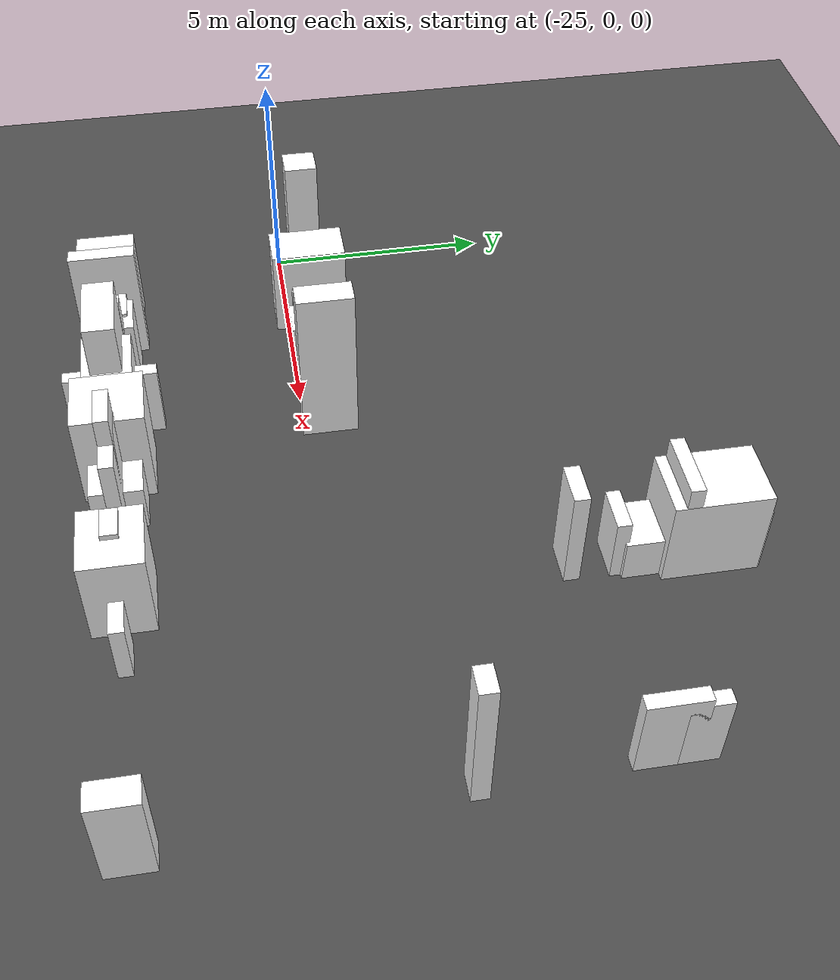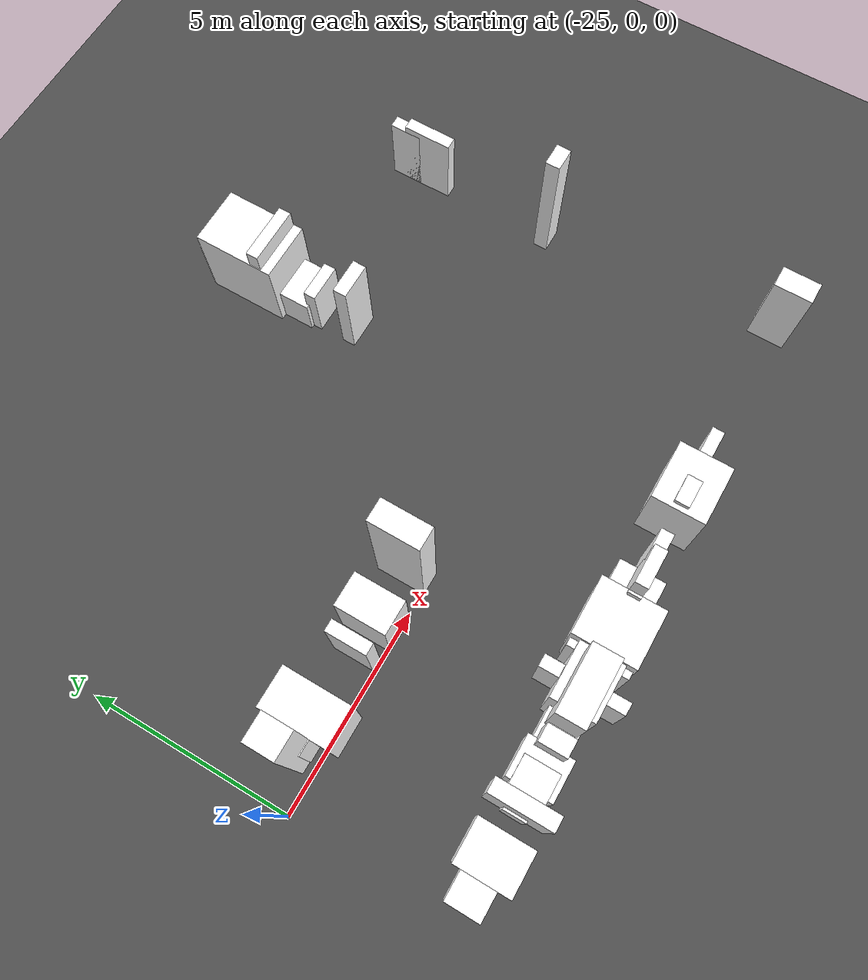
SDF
<sdf version="1.6">
 <world name="mirror_edge_world">
  <model name="ground_plane">
   <static>true</static>
   <link name="link">
    <collision name="collision">
     <geometry><plane><normal>0 0 1</normal><size>100 100</size></plane></geometry>
    </collision>
    <visual name="visual">
     <geometry><plane><normal>0 0 1</normal><size>100 100</size></plane></geometry>
     <material>
      <ambient>0.3 0.3 0.3 1</ambient>
      <diffuse>0.3 0.3 0.3 1</diffuse>
      <specular>0.5 0.5 0.5 1</specular>
      <emissive>0 0 0 1</emissive>
     </material>
    </visual>
   </link>
  </model>
  <model name="roadside_block_3_50_0">
   <static>true</static>
   <link name="link">
    <pose>-14.500712767602899 7.847958356860575 0.8271622026501164 0 0 0</pose>
    <collision name="collision">
     <geometry><box><size>1.3952716382572525 1.4444140237283143 1.6543244053002328</size></box></geometry>
    </collision>
    <visual name="visual">
     <geometry><box><size>1.3952716382572525 1.4444140237283143 1.6543244053002328</size></box></geometry>
     <material>
      <ambient>1 1 1 1</ambient>
      <diffuse>1 1 1 1</diffuse>
      <specular>0.9 0.9 0.9 1</specular>
      <emissive>0.05 0.05 0.05 1</emissive>
     </material>
    </visual>
   </link>
  </model>
  <model name="roadside_block_3_51_0">
   <static>true</static>
   <link name="link">
    <pose>-14.500712767602899 7.540317523997787 1.0459228507367115 0 0 0</pose>
    <collision name="collision">
     <geometry><box><size>1.4185194096509104 2.0 2.091845701473423</size></box></geometry>
    </collision>
    <visual name="visual">
     <geometry><box><size>1.4185194096509104 2.0 2.091845701473423</size></box></geometry>
     <material>
      <ambient>1 1 1 1</ambient>
      <diffuse>1 1 1 1</diffuse>
      <specular>0.9 0.9 0.9 1</specular>
      <emissive>0.05 0.05 0.05 1</emissive>
     </material>
    </visual>
   </link>
  </model>
  <model name="roadside_block_3_53_0">
   <static>true</static>
   <link name="link">
    <pose>-14.500712767602899 6.92503585827221 1.2817676842283197 0 0 0</pose>
    <collision name="collision">
     <geometry><box><size>1.383690701776096 0.3 2.5635353684566393</size></box></geometry>
    </collision>
    <visual name="visual">
     <geometry><box><size>1.383690701776096 0.3 2.5635353684566393</size></box></geometry>
     <material>
      <ambient>1 1 1 1</ambient>
      <diffuse>1 1 1 1</diffuse>
      <specular>0.9 0.9 0.9 1</specular>
      <emissive>0.05 0.05 0.05 1</emissive>
     </material>
    </visual>
   </link>
  </model>
  <model name="roadside_block_3_55_0">
   <static>true</static>
   <link name="link">
    <pose>-14.500712767602899 6.309754192546631 0.5 0 0 0</pose>
    <collision name="collision">
     <geometry><box><size>1.1083083746593492 1.0777857403071025 1.0</size></box></geometry>
    </collision>
    <visual name="visual">
     <geometry><box><size>1.1083083746593492 1.0777857403071025 1.0</size></box></geometry>
     <material>
      <ambient>1 1 1 1</ambient>
      <diffuse>1 1 1 1</diffuse>
      <specular>0.9 0.9 0.9 1</specular>
      <emissive>0.05 0.05 0.05 1</emissive>
     </material>
    </visual>
   </link>
  </model>
  <model name="roadside_block_3_56_0">
   <static>true</static>
   <link name="link">
    <pose>-9.9007127676029 6.002113359683843 0.8893914267075339 0 0 0</pose>
    <collision name="collision">
     <geometry><box><size>0.3 0.785157277844512 1.7787828534150678</size></box></geometry>
    </collision>
    <visual name="visual">
     <geometry><box><size>0.3 0.785157277844512 1.7787828534150678</size></box></geometry>
     <material>
      <ambient>1 1 1 1</ambient>
      <diffuse>1 1 1 1</diffuse>
      <specular>0.9 0.9 0.9 1</specular>
      <emissive>0.05 0.05 0.05 1</emissive>
     </material>
    </visual>
   </link>
  </model>
  <model name="roadside_block_3_57_0">
   <static>true</static>
   <link name="link">
    <pose>-14.500712767602899 5.694472526821055 0.7556667797105794 0 0 0</pose>
    <collision name="collision">
     <geometry><box><size>0.9189042706695628 0.3 1.5113335594211588</size></box></geometry>
    </collision>
    <visual name="visual">
     <geometry><box><size>0.9189042706695628 0.3 1.5113335594211588</size></box></geometry>
     <material>
      <ambient>1 1 1 1</ambient>
      <diffuse>1 1 1 1</diffuse>
      <specular>0.9 0.9 0.9 1</specular>
      <emissive>0.05 0.05 0.05 1</emissive>
     </material>
    </visual>
   </link>
  </model>
  <model name="roadside_block_3_58_0">
   <static>true</static>
   <link name="link">
    <pose>-9.9007127676029 5.386831693958268 0.9790327399200878 0 0 0</pose>
    <collision name="collision">
     <geometry><box><size>0.3 1.2061769712227408 1.9580654798401755</size></box></geometry>
    </collision>
    <visual name="visual">
     <geometry><box><size>0.3 1.2061769712227408 1.9580654798401755</size></box></geometry>
     <material>
      <ambient>1 1 1 1</ambient>
      <diffuse>1 1 1 1</diffuse>
      <specular>0.9 0.9 0.9 1</specular>
      <emissive>0.05 0.05 0.05 1</emissive>
     </material>
    </visual>
   </link>
  </model>
  <model name="roadside_block_3_60_0">
   <static>true</static>
   <link name="link">
    <pose>-14.500712767602899 4.771550028232689 1.2050505959637976 0 0 0</pose>
    <collision name="collision">
     <geometry><box><size>0.8715767964350316 0.32867758523544666 2.410101191927595</size></box></geometry>
    </collision>
    <visual name="visual">
     <geometry><box><size>0.8715767964350316 0.32867758523544666 2.410101191927595</size></box></geometry>
     <material>
      <ambient>1 1 1 1</ambient>
      <diffuse>1 1 1 1</diffuse>
      <specular>0.9 0.9 0.9 1</specular>
      <emissive>0.05 0.05 0.05 1</emissive>
     </material>
    </visual>
   </link>
  </model>
  <model name="roadside_block_3_69_0">
   <static>true</static>
   <link name="link">
    <pose>-9.9007127676029 2.002782532467595 1.654625317436449 0 0 0</pose>
    <collision name="collision">
     <geometry><box><size>0.5630547976939178 0.3567417492292497 3.309250634872898</size></box></geometry>
    </collision>
    <visual name="visual">
     <geometry><box><size>0.5630547976939178 0.3567417492292497 3.309250634872898</size></box></geometry>
     <material>
      <ambient>1 1 1 1</ambient>
      <diffuse>1 1 1 1</diffuse>
      <specular>0.9 0.9 0.9 1</specular>
      <emissive>0.05 0.05 0.05 1</emissive>
     </material>
    </visual>
   </link>
  </model>
  <model name="roadside_block_4_0_0">
   <static>true</static>
   <link name="link">
    <pose>-24.046 -4.037353343994417 0.5 0 0 0</pose>
    <collision name="collision">
     <geometry><box><size>1.3571045578873338 0.8447992108439666 1.0</size></box></geometry>
    </collision>
    <visual name="visual">
     <geometry><box><size>1.3571045578873338 0.8447992108439666 1.0</size></box></geometry>
     <material>
      <ambient>1 1 1 1</ambient>
      <diffuse>1 1 1 1</diffuse>
      <specular>0.9 0.9 0.9 1</specular>
      <emissive>0.05 0.05 0.05 1</emissive>
     </material>
    </visual>
   </link>
  </model>
  <model name="roadside_block_4_1_0">
   <static>true</static>
   <link name="link">
    <pose>-23.775722127329516 0.5626466560055823 1.9129224038467767 0 0 0</pose>
    <collision name="collision">
     <geometry><box><size>0.6601572133608336 0.7144933757955074 3.8258448076935534</size></box></geometry>
    </collision>
    <visual name="visual">
     <geometry><box><size>0.6601572133608336 0.7144933757955074 3.8258448076935534</size></box></geometry>
     <material>
      <ambient>1 1 1 1</ambient>
      <diffuse>1 1 1 1</diffuse>
      <specular>0.9 0.9 0.9 1</specular>
      <emissive>0.05 0.05 0.05 1</emissive>
     </material>
    </visual>
   </link>
  </model>
  <model name="roadside_block_4_2_0">
   <static>true</static>
   <link name="link">
    <pose>-23.505444254659036 -4.037353343994417 1.038353640607065 0 0 0</pose>
    <collision name="collision">
     <geometry><box><size>1.0113448933463915 1.3048746883781766 2.07670728121413</size></box></geometry>
    </collision>
    <visual name="visual">
     <geometry><box><size>1.0113448933463915 1.3048746883781766 2.07670728121413</size></box></geometry>
     <material>
      <ambient>1 1 1 1</ambient>
      <diffuse>1 1 1 1</diffuse>
      <specular>0.9 0.9 0.9 1</specular>
      <emissive>0.05 0.05 0.05 1</emissive>
     </material>
    </visual>
   </link>
  </model>
  <model name="roadside_block_4_3_0">
   <static>true</static>
   <link name="link">
    <pose>-23.235166381988552 0.5626466560055823 0.9350635928655766 0 0 0</pose>
    <collision name="collision">
     <geometry><box><size>1.1771664045285253 0.7603756350148442 1.8701271857311532</size></box></geometry>
    </collision>
    <visual name="visual">
     <geometry><box><size>1.1771664045285253 0.7603756350148442 1.8701271857311532</size></box></geometry>
     <material>
      <ambient>1 1 1 1</ambient>
      <diffuse>1 1 1 1</diffuse>
      <specular>0.9 0.9 0.9 1</specular>
      <emissive>0.05 0.05 0.05 1</emissive>
     </material>
    </visual>
   </link>
  </model>
  <model name="roadside_block_4_4_0">
   <static>true</static>
   <link name="link">
    <pose>-22.96488850931807 0.5626466560055823 1.059534993975058 0 0 0</pose>
    <collision name="collision">
     <geometry><box><size>0.9768791020309419 1.670859963521246 2.119069987950116</size></box></geometry>
    </collision>
    <visual name="visual">
     <geometry><box><size>0.9768791020309419 1.670859963521246 2.119069987950116</size></box></geometry>
     <material>
      <ambient>1 1 1 1</ambient>
      <diffuse>1 1 1 1</diffuse>
      <specular>0.9 0.9 0.9 1</specular>
      <emissive>0.05 0.05 0.05 1</emissive>
     </material>
    </visual>
   </link>
  </model>
  <model name="roadside_block_4_5_0">
   <static>true</static>
   <link name="link">
    <pose>-22.694610636647585 0.5626466560055823 0.986767659596048 0 0 0</pose>
    <collision name="collision">
     <geometry><box><size>0.3 1.0001790942883575 1.973535319192096</size></box></geometry>
    </collision>
    <visual name="visual">
     <geometry><box><size>0.3 1.0001790942883575 1.973535319192096</size></box></geometry>
     <material>
      <ambient>1 1 1 1</ambient>
      <diffuse>1 1 1 1</diffuse>
      <specular>0.9 0.9 0.9 1</specular>
      <emissive>0.05 0.05 0.05 1</emissive>
     </material>
    </visual>
   </link>
  </model>
  <model name="roadside_block_4_6_0">
   <static>true</static>
   <link name="link">
    <pose>-22.424332763977105 -4.037353343994417 1.4078386767890463 0 0 0</pose>
    <collision name="collision">
     <geometry><box><size>0.3522733244720758 1.4423992757748794 2.8156773535780926</size></box></geometry>
    </collision>
    <visual name="visual">
     <geometry><box><size>0.3522733244720758 1.4423992757748794 2.8156773535780926</size></box></geometry>
     <material>
      <ambient>1 1 1 1</ambient>
      <diffuse>1 1 1 1</diffuse>
      <specular>0.9 0.9 0.9 1</specular>
      <emissive>0.05 0.05 0.05 1</emissive>
     </material>
    </visual>
   </link>
  </model>
  <model name="roadside_block_4_7_0">
   <static>true</static>
   <link name="link">
    <pose>-22.15405489130662 -4.037353343994417 0.7292871379911126 0 0 0</pose>
    <collision name="collision">
     <geometry><box><size>1.0075815256220693 0.5405239749127302 1.458574275982225</size></box></geometry>
    </collision>
    <visual name="visual">
     <geometry><box><size>1.0075815256220693 0.5405239749127302 1.458574275982225</size></box></geometry>
     <material>
      <ambient>1 1 1 1</ambient>
      <diffuse>1 1 1 1</diffuse>
      <specular>0.9 0.9 0.9 1</specular>
      <emissive>0.05 0.05 0.05 1</emissive>
     </material>
    </visual>
   </link>
  </model>
  <model name="roadside_block_4_8_0">
   <static>true</static>
   <link name="link">
    <pose>-21.883777018636138 -4.037353343994417 0.8815735813027196 0 0 0</pose>
    <collision name="collision">
     <geometry><box><size>0.7269092677433385 0.8293690741642297 1.7631471626054391</size></box></geometry>
    </collision>
    <visual name="visual">
     <geometry><box><size>0.7269092677433385 0.8293690741642297 1.7631471626054391</size></box></geometry>
     <material>
      <ambient>1 1 1 1</ambient>
      <diffuse>1 1 1 1</diffuse>
      <specular>0.9 0.9 0.9 1</specular>
      <emissive>0.05 0.05 0.05 1</emissive>
     </material>
    </visual>
   </link>
  </model>
  <model name="roadside_block_4_9_0">
   <static>true</static>
   <link name="link">
    <pose>-21.613499145965655 -4.037353343994417 0.8474034101713145 0 0 0</pose>
    <collision name="collision">
     <geometry><box><size>0.9618497342136927 1.0831337911399503 1.694806820342629</size></box></geometry>
    </collision>
    <visual name="visual">
     <geometry><box><size>0.9618497342136927 1.0831337911399503 1.694806820342629</size></box></geometry>
     <material>
      <ambient>1 1 1 1</ambient>
      <diffuse>1 1 1 1</diffuse>
      <specular>0.9 0.9 0.9 1</specular>
      <emissive>0.05 0.05 0.05 1</emissive>
     </material>
    </visual>
   </link>
  </model>
  <model name="roadside_block_4_10_0">
   <static>true</static>
   <link name="link">
    <pose>-21.343221273295175 0.5626466560055823 1.008108051632917 0 0 0</pose>
    <collision name="collision">
     <geometry><box><size>0.3 1.004126472371133 2.016216103265834</size></box></geometry>
    </collision>
    <visual name="visual">
     <geometry><box><size>0.3 1.004126472371133 2.016216103265834</size></box></geometry>
     <material>
      <ambient>1 1 1 1</ambient>
      <diffuse>1 1 1 1</diffuse>
      <specular>0.9 0.9 0.9 1</specular>
      <emissive>0.05 0.05 0.05 1</emissive>
     </material>
    </visual>
   </link>
  </model>
  <model name="roadside_block_4_11_0">
   <static>true</static>
   <link name="link">
    <pose>-21.07294340062469 -4.037353343994417 1.2607251207154424 0 0 0</pose>
    <collision name="collision">
     <geometry><box><size>0.4161977727162527 0.6596052155946994 2.521450241430885</size></box></geometry>
    </collision>
    <visual name="visual">
     <geometry><box><size>0.4161977727162527 0.6596052155946994 2.521450241430885</size></box></geometry>
     <material>
      <ambient>1 1 1 1</ambient>
      <diffuse>1 1 1 1</diffuse>
      <specular>0.9 0.9 0.9 1</specular>
      <emissive>0.05 0.05 0.05 1</emissive>
     </material>
    </visual>
   </link>
  </model>
  <model name="roadside_block_4_12_0">
   <static>true</static>
   <link name="link">
    <pose>-20.802665527954208 -4.037353343994417 0.9132431844104201 0 0 0</pose>
    <collision name="collision">
     <geometry><box><size>0.7323906384776777 0.6006679946939588 1.8264863688208401</size></box></geometry>
    </collision>
    <visual name="visual">
     <geometry><box><size>0.7323906384776777 0.6006679946939588 1.8264863688208401</size></box></geometry>
     <material>
      <ambient>1 1 1 1</ambient>
      <diffuse>1 1 1 1</diffuse>
      <specular>0.9 0.9 0.9 1</specular>
      <emissive>0.05 0.05 0.05 1</emissive>
     </material>
    </visual>
   </link>
  </model>
  <model name="roadside_block_4_13_0">
   <static>true</static>
   <link name="link">
    <pose>-20.532387655283728 0.5626466560055823 1.0034922694921973 0 0 0</pose>
    <collision name="collision">
     <geometry><box><size>0.8350067989090805 1.2461565680048443 2.0069845389843946</size></box></geometry>
    </collision>
    <visual name="visual">
     <geometry><box><size>0.8350067989090805 1.2461565680048443 2.0069845389843946</size></box></geometry>
     <material>
      <ambient>1 1 1 1</ambient>
      <diffuse>1 1 1 1</diffuse>
      <specular>0.9 0.9 0.9 1</specular>
      <emissive>0.05 0.05 0.05 1</emissive>
     </material>
    </visual>
   </link>
  </model>
  <model name="roadside_block_4_14_0">
   <static>true</static>
   <link name="link">
    <pose>-20.262109782613244 -4.037353343994417 0.6353113896539095 0 0 0</pose>
    <collision name="collision">
     <geometry><box><size>1.6547104507867068 0.8298632316524003 1.270622779307819</size></box></geometry>
    </collision>
    <visual name="visual">
     <geometry><box><size>1.6547104507867068 0.8298632316524003 1.270622779307819</size></box></geometry>
     <material>
      <ambient>1 1 1 1</ambient>
      <diffuse>1 1 1 1</diffuse>
      <specular>0.9 0.9 0.9 1</specular>
      <emissive>0.05 0.05 0.05 1</emissive>
     </material>
    </visual>
   </link>
  </model>
  <model name="roadside_block_4_15_0">
   <static>true</static>
   <link name="link">
    <pose>-19.99183190994276 -4.037353343994417 1.6735990426736007 0 0 0</pose>
    <collision name="collision">
     <geometry><box><size>1.5411490393320582 0.6673433782857685 3.3471980853472014</size></box></geometry>
    </collision>
    <visual name="visual">
     <geometry><box><size>1.5411490393320582 0.6673433782857685 3.3471980853472014</size></box></geometry>
     <material>
      <ambient>1 1 1 1</ambient>
      <diffuse>1 1 1 1</diffuse>
      <specular>0.9 0.9 0.9 1</specular>
      <emissive>0.05 0.05 0.05 1</emissive>
     </material>
    </visual>
   </link>
  </model>
  <model name="roadside_block_4_16_0">
   <static>true</static>
   <link name="link">
    <pose>-19.721554037272277 -4.037353343994417 0.8508760773926517 0 0 0</pose>
    <collision name="collision">
     <geometry><box><size>0.3 2.0 1.7017521547853034</size></box></geometry>
    </collision>
    <visual name="visual">
     <geometry><box><size>0.3 2.0 1.7017521547853034</size></box></geometry>
     <material>
      <ambient>1 1 1 1</ambient>
      <diffuse>1 1 1 1</diffuse>
      <specular>0.9 0.9 0.9 1</specular>
      <emissive>0.05 0.05 0.05 1</emissive>
     </material>
    </visual>
   </link>
  </model>
  <model name="roadside_block_4_17_0">
   <static>true</static>
   <link name="link">
    <pose>-19.451276164601797 -4.037353343994417 1.082542569379487 0 0 0</pose>
    <collision name="collision">
     <geometry><box><size>1.858714676132528 1.0519701804002302 2.165085138758974</size></box></geometry>
    </collision>
    <visual name="visual">
     <geometry><box><size>1.858714676132528 1.0519701804002302 2.165085138758974</size></box></geometry>
     <material>
      <ambient>1 1 1 1</ambient>
      <diffuse>1 1 1 1</diffuse>
      <specular>0.9 0.9 0.9 1</specular>
      <emissive>0.05 0.05 0.05 1</emissive>
     </material>
    </visual>
   </link>
  </model>
  <model name="roadside_block_4_18_0">
   <static>true</static>
   <link name="link">
    <pose>-19.180998291931314 0.5626466560055823 1.8888179372372194 0 0 0</pose>
    <collision name="collision">
     <geometry><box><size>0.5531270216125 1.2096685526857385 3.7776358744744387</size></box></geometry>
    </collision>
    <visual name="visual">
     <geometry><box><size>0.5531270216125 1.2096685526857385 3.7776358744744387</size></box></geometry>
     <material>
      <ambient>1 1 1 1</ambient>
      <diffuse>1 1 1 1</diffuse>
      <specular>0.9 0.9 0.9 1</specular>
      <emissive>0.05 0.05 0.05 1</emissive>
     </material>
    </visual>
   </link>
  </model>
  <model name="roadside_block_4_19_0">
   <static>true</static>
   <link name="link">
    <pose>-18.91072041926083 -4.037353343994417 0.9500248842651506 0 0 0</pose>
    <collision name="collision">
     <geometry><box><size>0.6624221378837598 1.4273883300597876 1.9000497685303013</size></box></geometry>
    </collision>
    <visual name="visual">
     <geometry><box><size>0.6624221378837598 1.4273883300597876 1.9000497685303013</size></box></geometry>
     <material>
      <ambient>1 1 1 1</ambient>
      <diffuse>1 1 1 1</diffuse>
      <specular>0.9 0.9 0.9 1</specular>
      <emissive>0.05 0.05 0.05 1</emissive>
     </material>
    </visual>
   </link>
  </model>
  <model name="roadside_block_4_21_0">
   <static>true</static>
   <link name="link">
    <pose>-18.370164673919867 -4.037353343994417 1.1377384416403757 0 0 0</pose>
    <collision name="collision">
     <geometry><box><size>1.3835840260596322 1.507633011940376 2.2754768832807515</size></box></geometry>
    </collision>
    <visual name="visual">
     <geometry><box><size>1.3835840260596322 1.507633011940376 2.2754768832807515</size></box></geometry>
     <material>
      <ambient>1 1 1 1</ambient>
      <diffuse>1 1 1 1</diffuse>
      <specular>0.9 0.9 0.9 1</specular>
      <emissive>0.05 0.05 0.05 1</emissive>
     </material>
    </visual>
   </link>
  </model>
  <model name="roadside_block_4_24_0">
   <static>true</static>
   <link name="link">
    <pose>-17.559331055908416 -4.037353343994417 0.545028887089323 0 0 0</pose>
    <collision name="collision">
     <geometry><box><size>1.4842178272022812 1.1207187519208526 1.090057774178646</size></box></geometry>
    </collision>
    <visual name="visual">
     <geometry><box><size>1.4842178272022812 1.1207187519208526 1.090057774178646</size></box></geometry>
     <material>
      <ambient>1 1 1 1</ambient>
      <diffuse>1 1 1 1</diffuse>
      <specular>0.9 0.9 0.9 1</specular>
      <emissive>0.05 0.05 0.05 1</emissive>
     </material>
    </visual>
   </link>
  </model>
  <model name="roadside_block_4_25_0">
   <static>true</static>
   <link name="link">
    <pose>-17.289053183237936 -4.037353343994417 1.5575473089605585 0 0 0</pose>
    <collision name="collision">
     <geometry><box><size>0.8917969037360409 0.3 3.115094617921117</size></box></geometry>
    </collision>
    <visual name="visual">
     <geometry><box><size>0.8917969037360409 0.3 3.115094617921117</size></box></geometry>
     <material>
      <ambient>1 1 1 1</ambient>
      <diffuse>1 1 1 1</diffuse>
      <specular>0.9 0.9 0.9 1</specular>
      <emissive>0.05 0.05 0.05 1</emissive>
     </material>
    </visual>
   </link>
  </model>
  <model name="roadside_block_4_26_0">
   <static>true</static>
   <link name="link">
    <pose>-17.018775310567452 -4.037353343994417 1.2297910766676319 0 0 0</pose>
    <collision name="collision">
     <geometry><box><size>1.5510830596774026 0.3 2.4595821533352638</size></box></geometry>
    </collision>
    <visual name="visual">
     <geometry><box><size>1.5510830596774026 0.3 2.4595821533352638</size></box></geometry>
     <material>
      <ambient>1 1 1 1</ambient>
      <diffuse>1 1 1 1</diffuse>
      <specular>0.9 0.9 0.9 1</specular>
      <emissive>0.05 0.05 0.05 1</emissive>
     </material>
    </visual>
   </link>
  </model>
  <model name="roadside_block_4_33_0">
   <static>true</static>
   <link name="link">
    <pose>-15.126830201874075 -4.037353343994417 1.093112258996414 0 0 0</pose>
    <collision name="collision">
     <geometry><box><size>0.6657522759497949 0.3507676693634004 2.186224517992828</size></box></geometry>
    </collision>
    <visual name="visual">
     <geometry><box><size>0.6657522759497949 0.3507676693634004 2.186224517992828</size></box></geometry>
     <material>
      <ambient>1 1 1 1</ambient>
      <diffuse>1 1 1 1</diffuse>
      <specular>0.9 0.9 0.9 1</specular>
      <emissive>0.05 0.05 0.05 1</emissive>
     </material>
    </visual>
   </link>
  </model>
  <model name="roadside_block_4_34_0">
   <static>true</static>
   <link name="link">
    <pose>-14.856552329203593 -4.037353343994417 1.0327696509086912 0 0 0</pose>
    <collision name="collision">
     <geometry><box><size>1.446060353142925 1.286492638518924 2.0655393018173824</size></box></geometry>
    </collision>
    <visual name="visual">
     <geometry><box><size>1.446060353142925 1.286492638518924 2.0655393018173824</size></box></geometry>
     <material>
      <ambient>1 1 1 1</ambient>
      <diffuse>1 1 1 1</diffuse>
      <specular>0.9 0.9 0.9 1</specular>
      <emissive>0.05 0.05 0.05 1</emissive>
     </material>
    </visual>
   </link>
  </model>
  <model name="roadside_block_4_39_0">
   <static>true</static>
   <link name="link">
    <pose>-13.50516296585118 -4.037353343994417 0.6943648471225281 0 0 0</pose>
    <collision name="collision">
     <geometry><box><size>0.7129316721644035 0.3 1.3887296942450562</size></box></geometry>
    </collision>
    <visual name="visual">
     <geometry><box><size>0.7129316721644035 0.3 1.3887296942450562</size></box></geometry>
     <material>
      <ambient>1 1 1 1</ambient>
      <diffuse>1 1 1 1</diffuse>
      <specular>0.9 0.9 0.9 1</specular>
      <emissive>0.05 0.05 0.05 1</emissive>
     </material>
    </visual>
   </link>
  </model>
  <model name="roadside_block_4_54_0">
   <static>true</static>
   <link name="link">
    <pose>-9.45099487579394 -4.037353343994417 1.1179331968844024 0 0 0</pose>
    <collision name="collision">
     <geometry><box><size>0.5412195790580939 0.9432770954377144 2.235866393768805</size></box></geometry>
    </collision>
    <visual name="visual">
     <geometry><box><size>0.5412195790580939 0.9432770954377144 2.235866393768805</size></box></geometry>
     <material>
      <ambient>1 1 1 1</ambient>
      <diffuse>1 1 1 1</diffuse>
      <specular>0.9 0.9 0.9 1</specular>
      <emissive>0.05 0.05 0.05 1</emissive>
     </material>
    </visual>
   </link>
  </model>
 </world>
</sdf>
